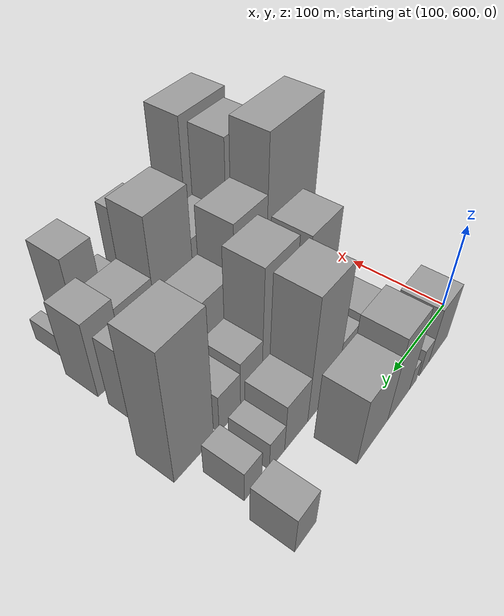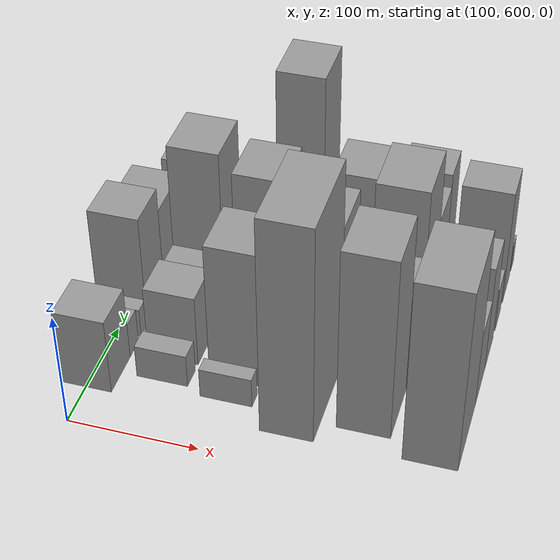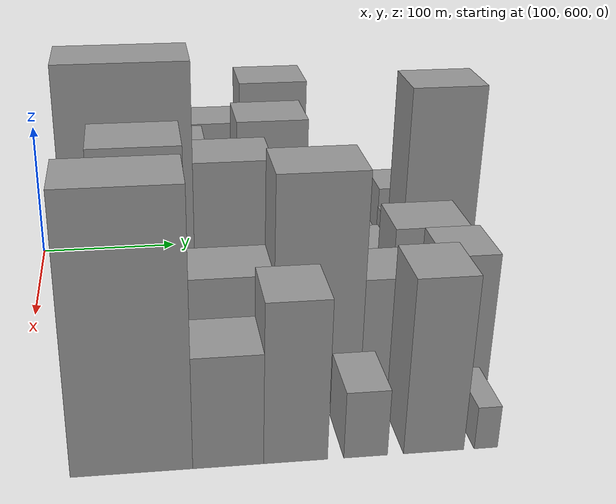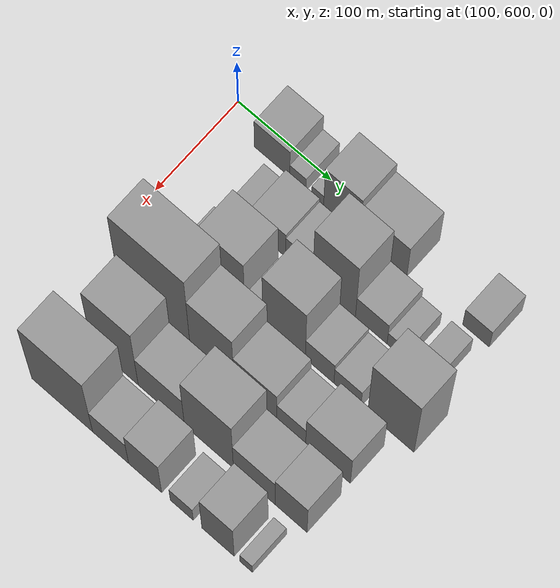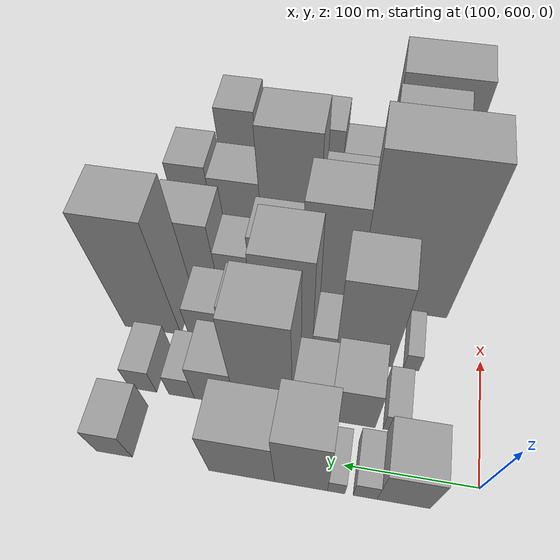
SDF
<sdf version="1.6">
 <world name="default">
  <model name="building_44">
   <static>1</static>
   <pose>100.0000 654.1920 0 0.000000 0.000000 0.000000</pose>
   <link name="link">
    <pose>0 0 34.50 0 0 0</pose>
    <collision name="collision"><geometry><box><size>40.0000 38.0477 69.0000</size></box></geometry></collision>
    <visual name="visual">
     <cast_shadows>0</cast_shadows>
     <geometry><box><size>40.0000 38.0477 69.0000</size></box></geometry>
     <material>
      <script>
       <uri>model://grey_wall/materials/scripts</uri>
       <uri>model://grey_wall/materials/textures</uri>
       <name>vrc/grey_wall</name>
      </script>
     </material>
    </visual>
   </link>
  </model>
  <model name="building_45">
   <static>1</static>
   <pose>100.0000 681.9633 0 0.000000 0.000000 0.000000</pose>
   <link name="link">
    <pose>0 0 16.50 0 0 0</pose>
    <collision name="collision"><geometry><box><size>40.0000 17.4950 33.0000</size></box></geometry></collision>
    <visual name="visual">
     <cast_shadows>0</cast_shadows>
     <geometry><box><size>40.0000 17.4950 33.0000</size></box></geometry>
     <material>
      <script>
       <uri>model://grey_wall/materials/scripts</uri>
       <uri>model://grey_wall/materials/textures</uri>
       <name>vrc/grey_wall</name>
      </script>
     </material>
    </visual>
   </link>
  </model>
  <model name="building_46">
   <static>1</static>
   <pose>100.0000 703.1020 0 0.000000 0.000000 0.000000</pose>
   <link name="link">
    <pose>0 0 13.50 0 0 0</pose>
    <collision name="collision"><geometry><box><size>40.0000 12.7823 27.0000</size></box></geometry></collision>
    <visual name="visual">
     <cast_shadows>0</cast_shadows>
     <geometry><box><size>40.0000 12.7823 27.0000</size></box></geometry>
     <material>
      <script>
       <uri>model://grey_wall/materials/scripts</uri>
       <uri>model://grey_wall/materials/textures</uri>
       <name>vrc/grey_wall</name>
      </script>
     </material>
    </visual>
   </link>
  </model>
  <model name="building_47">
   <static>1</static>
   <pose>100.0000 728.9406 0 0.000000 0.000000 0.000000</pose>
   <link name="link">
    <pose>0 0 52.50 0 0 0</pose>
    <collision name="collision"><geometry><box><size>40.0000 38.8948 105.0000</size></box></geometry></collision>
    <visual name="visual">
     <cast_shadows>0</cast_shadows>
     <geometry><box><size>40.0000 38.8948 105.0000</size></box></geometry>
     <material>
      <script>
       <uri>model://grey_wall/materials/scripts</uri>
       <uri>model://grey_wall/materials/textures</uri>
       <name>vrc/grey_wall</name>
      </script>
     </material>
    </visual>
   </link>
  </model>
  <model name="building_48">
   <static>1</static>
   <pose>100.0000 773.1806 0 0.000000 0.000000 0.000000</pose>
   <link name="link">
    <pose>0 0 42.00 0 0 0</pose>
    <collision name="collision"><geometry><box><size>40.0000 49.5852 84.0000</size></box></geometry></collision>
    <visual name="visual">
     <cast_shadows>0</cast_shadows>
     <geometry><box><size>40.0000 49.5852 84.0000</size></box></geometry>
     <material>
      <script>
       <uri>model://grey_wall/materials/scripts</uri>
       <uri>model://grey_wall/materials/textures</uri>
       <name>vrc/grey_wall</name>
      </script>
     </material>
    </visual>
   </link>
  </model>
  <model name="building_49">
   <static>1</static>
   <pose>100.0000 870.8977 0 0.000000 0.000000 0.000000</pose>
   <link name="link">
    <pose>0 0 24.00 0 0 0</pose>
    <collision name="collision"><geometry><box><size>40.0000 27.9497 48.0000</size></box></geometry></collision>
    <visual name="visual">
     <cast_shadows>0</cast_shadows>
     <geometry><box><size>40.0000 27.9497 48.0000</size></box></geometry>
     <material>
      <script>
       <uri>model://grey_wall/materials/scripts</uri>
       <uri>model://grey_wall/materials/textures</uri>
       <name>vrc/grey_wall</name>
      </script>
     </material>
    </visual>
   </link>
  </model>
  <model name="building_94">
   <static>1</static>
   <pose>152.0000 664.9774 0 0.000000 0.000000 0.000000</pose>
   <link name="link">
    <pose>0 0 15.00 0 0 0</pose>
    <collision name="collision"><geometry><box><size>40.0000 17.4816 30.0000</size></box></geometry></collision>
    <visual name="visual">
     <cast_shadows>0</cast_shadows>
     <geometry><box><size>40.0000 17.4816 30.0000</size></box></geometry>
     <material>
      <script>
       <uri>model://grey_wall/materials/scripts</uri>
       <uri>model://grey_wall/materials/textures</uri>
       <name>vrc/grey_wall</name>
      </script>
     </material>
    </visual>
   </link>
  </model>
  <model name="building_95">
   <static>1</static>
   <pose>152.0000 697.3945 0 0.000000 0.000000 0.000000</pose>
   <link name="link">
    <pose>0 0 33.00 0 0 0</pose>
    <collision name="collision"><geometry><box><size>40.0000 35.3527 66.0000</size></box></geometry></collision>
    <visual name="visual">
     <cast_shadows>0</cast_shadows>
     <geometry><box><size>40.0000 35.3527 66.0000</size></box></geometry>
     <material>
      <script>
       <uri>model://grey_wall/materials/scripts</uri>
       <uri>model://grey_wall/materials/textures</uri>
       <name>vrc/grey_wall</name>
      </script>
     </material>
    </visual>
   </link>
  </model>
  <model name="building_96">
   <static>1</static>
   <pose>152.0000 729.4953 0 0.000000 0.000000 0.000000</pose>
   <link name="link">
    <pose>0 0 28.50 0 0 0</pose>
    <collision name="collision"><geometry><box><size>40.0000 28.8489 57.0000</size></box></geometry></collision>
    <visual name="visual">
     <cast_shadows>0</cast_shadows>
     <geometry><box><size>40.0000 28.8489 57.0000</size></box></geometry>
     <material>
      <script>
       <uri>model://grey_wall/materials/scripts</uri>
       <uri>model://grey_wall/materials/textures</uri>
       <name>vrc/grey_wall</name>
      </script>
     </material>
    </visual>
   </link>
  </model>
  <model name="building_97">
   <static>1</static>
   <pose>152.0000 766.5316 0 0.000000 0.000000 0.000000</pose>
   <link name="link">
    <pose>0 0 75.00 0 0 0</pose>
    <collision name="collision"><geometry><box><size>40.0000 45.2237 150.0000</size></box></geometry></collision>
    <visual name="visual">
     <cast_shadows>0</cast_shadows>
     <geometry><box><size>40.0000 45.2237 150.0000</size></box></geometry>
     <material>
      <script>
       <uri>model://grey_wall/materials/scripts</uri>
       <uri>model://grey_wall/materials/textures</uri>
       <name>vrc/grey_wall</name>
      </script>
     </material>
    </visual>
   </link>
  </model>
  <model name="building_98">
   <static>1</static>
   <pose>152.0000 805.8189 0 0.000000 0.000000 0.000000</pose>
   <link name="link">
    <pose>0 0 30.00 0 0 0</pose>
    <collision name="collision"><geometry><box><size>40.0000 33.3508 60.0000</size></box></geometry></collision>
    <visual name="visual">
     <cast_shadows>0</cast_shadows>
     <geometry><box><size>40.0000 33.3508 60.0000</size></box></geometry>
     <material>
      <script>
       <uri>model://grey_wall/materials/scripts</uri>
       <uri>model://grey_wall/materials/textures</uri>
       <name>vrc/grey_wall</name>
      </script>
     </material>
    </visual>
   </link>
  </model>
  <model name="building_99">
   <static>1</static>
   <pose>152.0000 832.9193 0 0.000000 0.000000 0.000000</pose>
   <link name="link">
    <pose>0 0 18.00 0 0 0</pose>
    <collision name="collision"><geometry><box><size>40.0000 20.8501 36.0000</size></box></geometry></collision>
    <visual name="visual">
     <cast_shadows>0</cast_shadows>
     <geometry><box><size>40.0000 20.8501 36.0000</size></box></geometry>
     <material>
      <script>
       <uri>model://grey_wall/materials/scripts</uri>
       <uri>model://grey_wall/materials/textures</uri>
       <name>vrc/grey_wall</name>
      </script>
     </material>
    </visual>
   </link>
  </model>
  <model name="building_100">
   <static>1</static>
   <pose>152.0000 864.4934 0 0.000000 0.000000 0.000000</pose>
   <link name="link">
    <pose>0 0 19.50 0 0 0</pose>
    <collision name="collision"><geometry><box><size>40.0000 22.2980 39.0000</size></box></geometry></collision>
    <visual name="visual">
     <cast_shadows>0</cast_shadows>
     <geometry><box><size>40.0000 22.2980 39.0000</size></box></geometry>
     <material>
      <script>
       <uri>model://grey_wall/materials/scripts</uri>
       <uri>model://grey_wall/materials/textures</uri>
       <name>vrc/grey_wall</name>
      </script>
     </material>
    </visual>
   </link>
  </model>
  <model name="building_143">
   <static>1</static>
   <pose>204.0000 655.7681 0 0.000000 0.000000 0.000000</pose>
   <link name="link">
    <pose>0 0 13.50 0 0 0</pose>
    <collision name="collision"><geometry><box><size>40.0000 12.5044 27.0000</size></box></geometry></collision>
    <visual name="visual">
     <cast_shadows>0</cast_shadows>
     <geometry><box><size>40.0000 12.5044 27.0000</size></box></geometry>
     <material>
      <script>
       <uri>model://grey_wall/materials/scripts</uri>
       <uri>model://grey_wall/materials/textures</uri>
       <name>vrc/grey_wall</name>
      </script>
     </material>
    </visual>
   </link>
  </model>
  <model name="building_144">
   <static>1</static>
   <pose>204.0000 694.2369 0 0.000000 0.000000 0.000000</pose>
   <link name="link">
    <pose>0 0 63.00 0 0 0</pose>
    <collision name="collision"><geometry><box><size>40.0000 46.4333 126.0000</size></box></geometry></collision>
    <visual name="visual">
     <cast_shadows>0</cast_shadows>
     <geometry><box><size>40.0000 46.4333 126.0000</size></box></geometry>
     <material>
      <script>
       <uri>model://grey_wall/materials/scripts</uri>
       <uri>model://grey_wall/materials/textures</uri>
       <name>vrc/grey_wall</name>
      </script>
     </material>
    </visual>
   </link>
  </model>
  <model name="building_145">
   <static>1</static>
   <pose>204.0000 727.0333 0 0.000000 0.000000 0.000000</pose>
   <link name="link">
    <pose>0 0 18.00 0 0 0</pose>
    <collision name="collision"><geometry><box><size>40.0000 19.1595 36.0000</size></box></geometry></collision>
    <visual name="visual">
     <cast_shadows>0</cast_shadows>
     <geometry><box><size>40.0000 19.1595 36.0000</size></box></geometry>
     <material>
      <script>
       <uri>model://grey_wall/materials/scripts</uri>
       <uri>model://grey_wall/materials/textures</uri>
       <name>vrc/grey_wall</name>
      </script>
     </material>
    </visual>
   </link>
  </model>
  <model name="building_146">
   <static>1</static>
   <pose>204.0000 759.2634 0 0.000000 0.000000 0.000000</pose>
   <link name="link">
    <pose>0 0 70.50 0 0 0</pose>
    <collision name="collision"><geometry><box><size>40.0000 45.3006 141.0000</size></box></geometry></collision>
    <visual name="visual">
     <cast_shadows>0</cast_shadows>
     <geometry><box><size>40.0000 45.3006 141.0000</size></box></geometry>
     <material>
      <script>
       <uri>model://grey_wall/materials/scripts</uri>
       <uri>model://grey_wall/materials/textures</uri>
       <name>vrc/grey_wall</name>
      </script>
     </material>
    </visual>
   </link>
  </model>
  <model name="building_147">
   <static>1</static>
   <pose>204.0000 797.0327 0 0.000000 0.000000 0.000000</pose>
   <link name="link">
    <pose>0 0 30.00 0 0 0</pose>
    <collision name="collision"><geometry><box><size>40.0000 30.2379 60.0000</size></box></geometry></collision>
    <visual name="visual">
     <cast_shadows>0</cast_shadows>
     <geometry><box><size>40.0000 30.2379 60.0000</size></box></geometry>
     <material>
      <script>
       <uri>model://grey_wall/materials/scripts</uri>
       <uri>model://grey_wall/materials/textures</uri>
       <name>vrc/grey_wall</name>
      </script>
     </material>
    </visual>
   </link>
  </model>
  <model name="building_148">
   <static>1</static>
   <pose>204.0000 826.4240 0 0.000000 0.000000 0.000000</pose>
   <link name="link">
    <pose>0 0 24.00 0 0 0</pose>
    <collision name="collision"><geometry><box><size>40.0000 28.5447 48.0000</size></box></geometry></collision>
    <visual name="visual">
     <cast_shadows>0</cast_shadows>
     <geometry><box><size>40.0000 28.5447 48.0000</size></box></geometry>
     <material>
      <script>
       <uri>model://grey_wall/materials/scripts</uri>
       <uri>model://grey_wall/materials/textures</uri>
       <name>vrc/grey_wall</name>
      </script>
     </material>
    </visual>
   </link>
  </model>
  <model name="building_149">
   <static>1</static>
   <pose>204.0000 871.9807 0 0.000000 0.000000 0.000000</pose>
   <link name="link">
    <pose>0 0 79.50 0 0 0</pose>
    <collision name="collision"><geometry><box><size>40.0000 48.5687 159.0000</size></box></geometry></collision>
    <visual name="visual">
     <cast_shadows>0</cast_shadows>
     <geometry><box><size>40.0000 48.5687 159.0000</size></box></geometry>
     <material>
      <script>
       <uri>model://grey_wall/materials/scripts</uri>
       <uri>model://grey_wall/materials/textures</uri>
       <name>vrc/grey_wall</name>
      </script>
     </material>
    </visual>
   </link>
  </model>
  <model name="building_187">
   <static>1</static>
   <pose>256.0000 667.2887 0 0.000000 0.000000 0.000000</pose>
   <link name="link">
    <pose>0 0 97.50 0 0 0</pose>
    <collision name="collision"><geometry><box><size>40.0000 76.6004 195.0000</size></box></geometry></collision>
    <visual name="visual">
     <cast_shadows>0</cast_shadows>
     <geometry><box><size>40.0000 76.6004 195.0000</size></box></geometry>
     <material>
      <script>
       <uri>model://grey_wall/materials/scripts</uri>
       <uri>model://grey_wall/materials/textures</uri>
       <name>vrc/grey_wall</name>
      </script>
     </material>
    </visual>
   </link>
  </model>
  <model name="building_188">
   <static>1</static>
   <pose>256.0000 728.9497 0 0.000000 0.000000 0.000000</pose>
   <link name="link">
    <pose>0 0 67.50 0 0 0</pose>
    <collision name="collision"><geometry><box><size>40.0000 46.7217 135.0000</size></box></geometry></collision>
    <visual name="visual">
     <cast_shadows>0</cast_shadows>
     <geometry><box><size>40.0000 46.7217 135.0000</size></box></geometry>
     <material>
      <script>
       <uri>model://grey_wall/materials/scripts</uri>
       <uri>model://grey_wall/materials/textures</uri>
       <name>vrc/grey_wall</name>
      </script>
     </material>
    </visual>
   </link>
  </model>
  <model name="building_189">
   <static>1</static>
   <pose>256.0000 775.1195 0 0.000000 0.000000 0.000000</pose>
   <link name="link">
    <pose>0 0 40.50 0 0 0</pose>
    <collision name="collision"><geometry><box><size>40.0000 45.6178 81.0000</size></box></geometry></collision>
    <visual name="visual">
     <cast_shadows>0</cast_shadows>
     <geometry><box><size>40.0000 45.6178 81.0000</size></box></geometry>
     <material>
      <script>
       <uri>model://grey_wall/materials/scripts</uri>
       <uri>model://grey_wall/materials/textures</uri>
       <name>vrc/grey_wall</name>
      </script>
     </material>
    </visual>
   </link>
  </model>
  <model name="building_190">
   <static>1</static>
   <pose>256.0000 813.1176 0 0.000000 0.000000 0.000000</pose>
   <link name="link">
    <pose>0 0 25.50 0 0 0</pose>
    <collision name="collision"><geometry><box><size>40.0000 30.3784 51.0000</size></box></geometry></collision>
    <visual name="visual">
     <cast_shadows>0</cast_shadows>
     <geometry><box><size>40.0000 30.3784 51.0000</size></box></geometry>
     <material>
      <script>
       <uri>model://grey_wall/materials/scripts</uri>
       <uri>model://grey_wall/materials/textures</uri>
       <name>vrc/grey_wall</name>
      </script>
     </material>
    </visual>
   </link>
  </model>
  <model name="building_191">
   <static>1</static>
   <pose>256.0000 851.7511 0 0.000000 0.000000 0.000000</pose>
   <link name="link">
    <pose>0 0 43.50 0 0 0</pose>
    <collision name="collision"><geometry><box><size>40.0000 46.8887 87.0000</size></box></geometry></collision>
    <visual name="visual">
     <cast_shadows>0</cast_shadows>
     <geometry><box><size>40.0000 46.8887 87.0000</size></box></geometry>
     <material>
      <script>
       <uri>model://grey_wall/materials/scripts</uri>
       <uri>model://grey_wall/materials/textures</uri>
       <name>vrc/grey_wall</name>
      </script>
     </material>
    </visual>
   </link>
  </model>
  <model name="building_234">
   <static>1</static>
   <pose>308.0000 672.3225 0 0.000000 0.000000 0.000000</pose>
   <link name="link">
    <pose>0 0 82.50 0 0 0</pose>
    <collision name="collision"><geometry><box><size>40.0000 50.1447 165.0000</size></box></geometry></collision>
    <visual name="visual">
     <cast_shadows>0</cast_shadows>
     <geometry><box><size>40.0000 50.1447 165.0000</size></box></geometry>
     <material>
      <script>
       <uri>model://grey_wall/materials/scripts</uri>
       <uri>model://grey_wall/materials/textures</uri>
       <name>vrc/grey_wall</name>
      </script>
     </material>
    </visual>
   </link>
  </model>
  <model name="building_235">
   <static>1</static>
   <pose>308.0000 721.9718 0 0.000000 0.000000 0.000000</pose>
   <link name="link">
    <pose>0 0 43.50 0 0 0</pose>
    <collision name="collision"><geometry><box><size>40.0000 49.1540 87.0000</size></box></geometry></collision>
    <visual name="visual">
     <cast_shadows>0</cast_shadows>
     <geometry><box><size>40.0000 49.1540 87.0000</size></box></geometry>
     <material>
      <script>
       <uri>model://grey_wall/materials/scripts</uri>
       <uri>model://grey_wall/materials/textures</uri>
       <name>vrc/grey_wall</name>
      </script>
     </material>
    </visual>
   </link>
  </model>
  <model name="building_236">
   <static>1</static>
   <pose>308.0000 772.4573 0 0.000000 0.000000 0.000000</pose>
   <link name="link">
    <pose>0 0 73.50 0 0 0</pose>
    <collision name="collision"><geometry><box><size>40.0000 51.8170 147.0000</size></box></geometry></collision>
    <visual name="visual">
     <cast_shadows>0</cast_shadows>
     <geometry><box><size>40.0000 51.8170 147.0000</size></box></geometry>
     <material>
      <script>
       <uri>model://grey_wall/materials/scripts</uri>
       <uri>model://grey_wall/materials/textures</uri>
       <name>vrc/grey_wall</name>
      </script>
     </material>
    </visual>
   </link>
  </model>
  <model name="building_237">
   <static>1</static>
   <pose>308.0000 820.2965 0 0.000000 0.000000 0.000000</pose>
   <link name="link">
    <pose>0 0 40.50 0 0 0</pose>
    <collision name="collision"><geometry><box><size>40.0000 43.8615 81.0000</size></box></geometry></collision>
    <visual name="visual">
     <cast_shadows>0</cast_shadows>
     <geometry><box><size>40.0000 43.8615 81.0000</size></box></geometry>
     <material>
      <script>
       <uri>model://grey_wall/materials/scripts</uri>
       <uri>model://grey_wall/materials/textures</uri>
       <name>vrc/grey_wall</name>
      </script>
     </material>
    </visual>
   </link>
  </model>
  <model name="building_238">
   <static>1</static>
   <pose>308.0000 858.9936 0 0.000000 0.000000 0.000000</pose>
   <link name="link">
    <pose>0 0 46.50 0 0 0</pose>
    <collision name="collision"><geometry><box><size>40.0000 33.5327 93.0000</size></box></geometry></collision>
    <visual name="visual">
     <cast_shadows>0</cast_shadows>
     <geometry><box><size>40.0000 33.5327 93.0000</size></box></geometry>
     <material>
      <script>
       <uri>model://grey_wall/materials/scripts</uri>
       <uri>model://grey_wall/materials/textures</uri>
       <name>vrc/grey_wall</name>
      </script>
     </material>
    </visual>
   </link>
  </model>
  <model name="building_281">
   <static>1</static>
   <pose>360.0000 663.2865 0 0.000000 0.000000 0.000000</pose>
   <link name="link">
    <pose>0 0 82.50 0 0 0</pose>
    <collision name="collision"><geometry><box><size>40.0000 65.1650 165.0000</size></box></geometry></collision>
    <visual name="visual">
     <cast_shadows>0</cast_shadows>
     <geometry><box><size>40.0000 65.1650 165.0000</size></box></geometry>
     <material>
      <script>
       <uri>model://grey_wall/materials/scripts</uri>
       <uri>model://grey_wall/materials/textures</uri>
       <name>vrc/grey_wall</name>
      </script>
     </material>
    </visual>
   </link>
  </model>
  <model name="building_282">
   <static>1</static>
   <pose>360.0000 715.0542 0 0.000000 0.000000 0.000000</pose>
   <link name="link">
    <pose>0 0 34.50 0 0 0</pose>
    <collision name="collision"><geometry><box><size>40.0000 38.3704 69.0000</size></box></geometry></collision>
    <visual name="visual">
     <cast_shadows>0</cast_shadows>
     <geometry><box><size>40.0000 38.3704 69.0000</size></box></geometry>
     <material>
      <script>
       <uri>model://grey_wall/materials/scripts</uri>
       <uri>model://grey_wall/materials/textures</uri>
       <name>vrc/grey_wall</name>
      </script>
     </material>
    </visual>
   </link>
  </model>
  <model name="building_283">
   <static>1</static>
   <pose>360.0000 751.7856 0 0.000000 0.000000 0.000000</pose>
   <link name="link">
    <pose>0 0 49.50 0 0 0</pose>
    <collision name="collision"><geometry><box><size>40.0000 35.0925 99.0000</size></box></geometry></collision>
    <visual name="visual">
     <cast_shadows>0</cast_shadows>
     <geometry><box><size>40.0000 35.0925 99.0000</size></box></geometry>
     <material>
      <script>
       <uri>model://grey_wall/materials/scripts</uri>
       <uri>model://grey_wall/materials/textures</uri>
       <name>vrc/grey_wall</name>
      </script>
     </material>
    </visual>
   </link>
  </model>
  <model name="building_284">
   <static>1</static>
   <pose>360.0000 790.4868 0 0.000000 0.000000 0.000000</pose>
   <link name="link">
    <pose>0 0 21.00 0 0 0</pose>
    <collision name="collision"><geometry><box><size>40.0000 24.3099 42.0000</size></box></geometry></collision>
    <visual name="visual">
     <cast_shadows>0</cast_shadows>
     <geometry><box><size>40.0000 24.3099 42.0000</size></box></geometry>
     <material>
      <script>
       <uri>model://grey_wall/materials/scripts</uri>
       <uri>model://grey_wall/materials/textures</uri>
       <name>vrc/grey_wall</name>
      </script>
     </material>
    </visual>
   </link>
  </model>
  <model name="building_285">
   <static>1</static>
   <pose>360.0000 828.6297 0 0.000000 0.000000 0.000000</pose>
   <link name="link">
    <pose>0 0 54.00 0 0 0</pose>
    <collision name="collision"><geometry><box><size>40.0000 33.9760 108.0000</size></box></geometry></collision>
    <visual name="visual">
     <cast_shadows>0</cast_shadows>
     <geometry><box><size>40.0000 33.9760 108.0000</size></box></geometry>
     <material>
      <script>
       <uri>model://grey_wall/materials/scripts</uri>
       <uri>model://grey_wall/materials/textures</uri>
       <name>vrc/grey_wall</name>
      </script>
     </material>
    </visual>
   </link>
  </model>
  <model name="building_286">
   <static>1</static>
   <pose>360.0000 858.2340 0 0.000000 0.000000 0.000000</pose>
   <link name="link">
    <pose>0 0 13.50 0 0 0</pose>
    <collision name="collision"><geometry><box><size>40.0000 13.2327 27.0000</size></box></geometry></collision>
    <visual name="visual">
     <cast_shadows>0</cast_shadows>
     <geometry><box><size>40.0000 13.2327 27.0000</size></box></geometry>
     <material>
      <script>
       <uri>model://grey_wall/materials/scripts</uri>
       <uri>model://grey_wall/materials/textures</uri>
       <name>vrc/grey_wall</name>
      </script>
     </material>
    </visual>
   </link>
  </model>
 </world>
</sdf>
